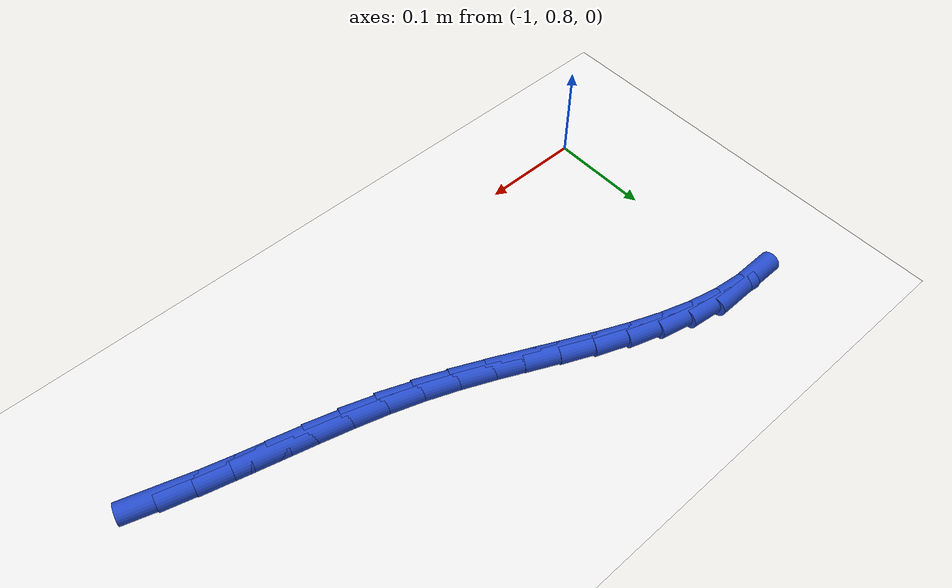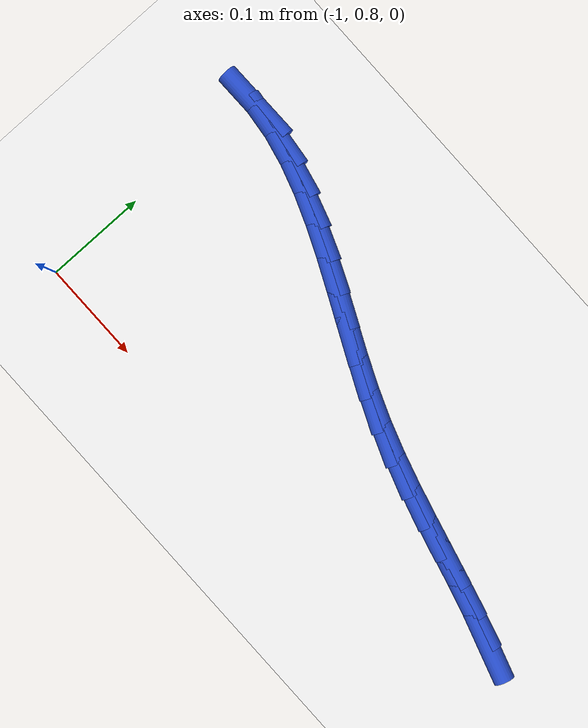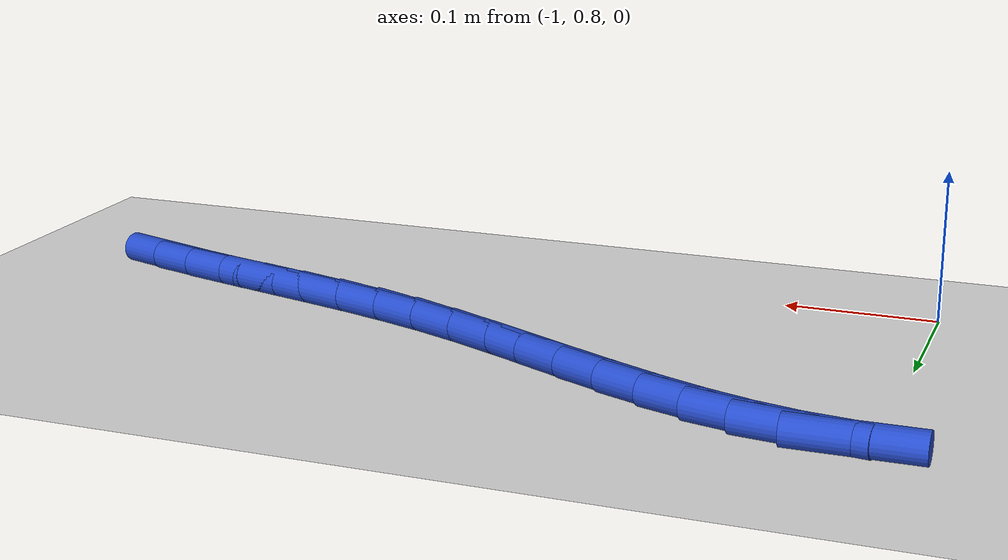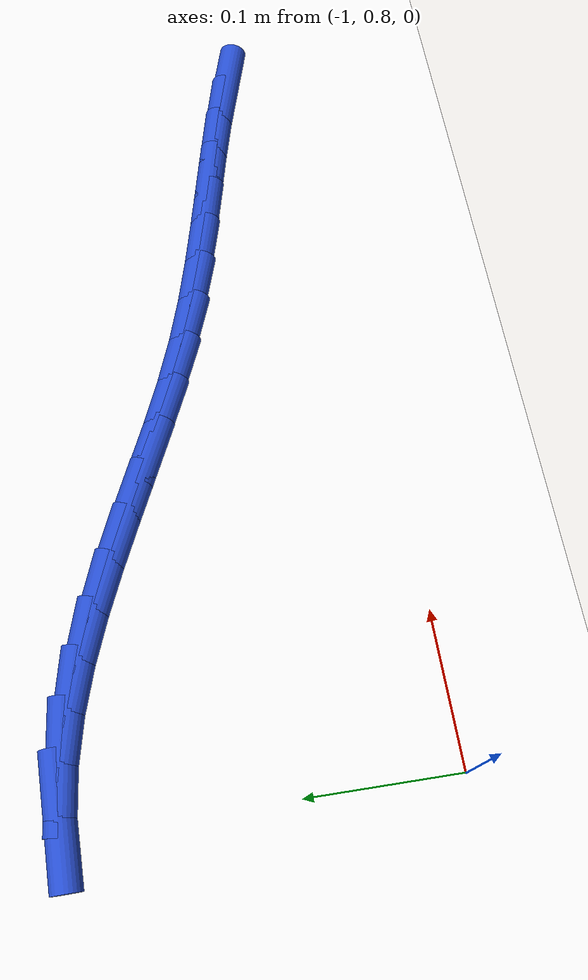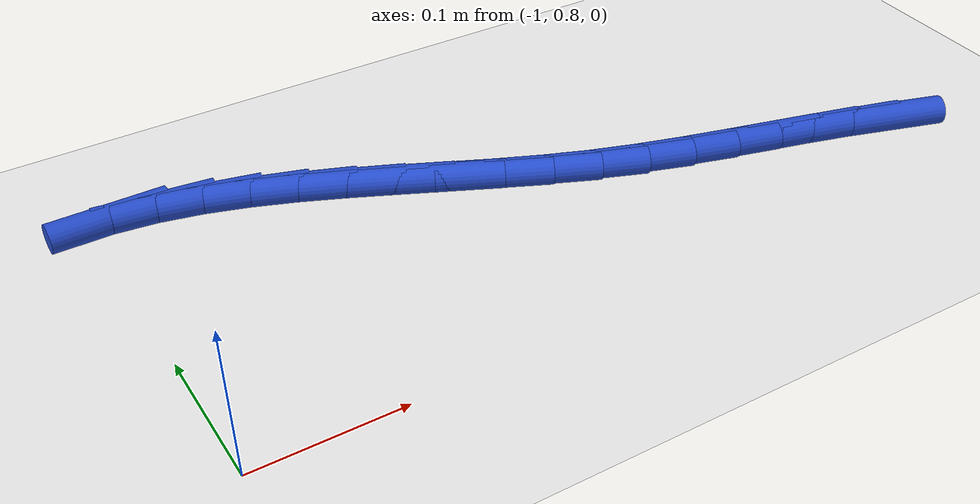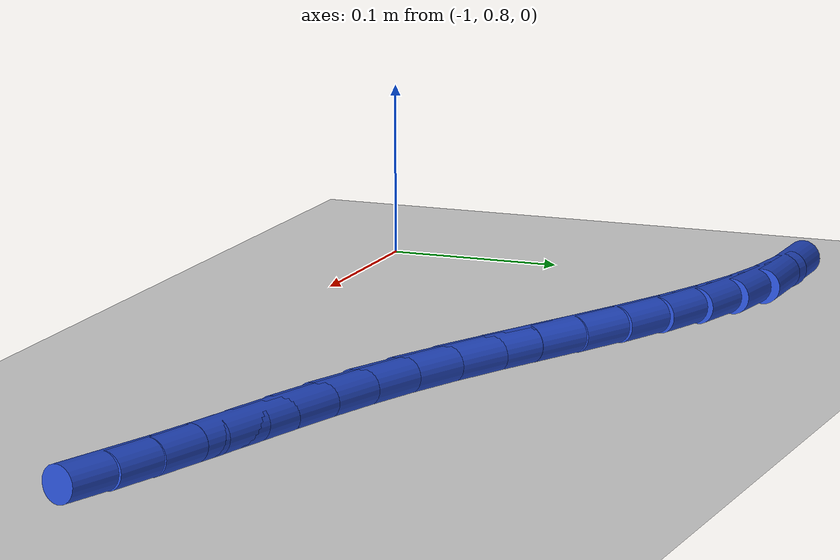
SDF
<sdf version="1.6">
 <world name="default">
  <model name="ground_plane">
   <static>1</static>
   <link name="link">
    <collision name="collision">
     <geometry><plane><normal>0 0 1</normal><size>100 100</size></plane></geometry>
     <surface><friction><ode><mu>100</mu><mu2>50</mu2></ode></friction></surface>
    </collision>
    <visual name="visual">
     <cast_shadows>0</cast_shadows>
     <geometry><plane><normal>0 0 1</normal><size>100 100</size></plane></geometry>
     <material>
      <script><uri>file://media/materials/scripts/gazebo.material</uri><name>Gazebo/WhiteGlow</name></script>
     </material>
    </visual>
   </link>
  </model>
  <model name="line">
   <link name="link_33">
    <pose>-0.4786626644284542 0.8703753021926585 0.01 0 1.57 -0.3038911339191584</pose>
    <collision name="collision">
     <geometry><cylinder><radius>0.01</radius><length>0.08</length></cylinder></geometry>
    </collision>
    <visual name="visual">
     <material>
      <script><name>Gazebo/Blue</name><uri>file://media/materials/scripts/gazebo.material</uri></script>
     </material>
     <geometry><cylinder><radius>0.01</radius><length>0.08</length></cylinder></geometry>
    </visual>
   </link>
   <link name="link_34">
    <pose>-0.5083128460349068 0.8796737438810759 0.01 0 1.57 -0.26995806032222636</pose>
    <collision name="collision">
     <geometry><cylinder><radius>0.01</radius><length>0.08</length></cylinder></geometry>
    </collision>
    <visual name="visual">
     <material>
      <script><name>Gazebo/Blue</name><uri>file://media/materials/scripts/gazebo.material</uri></script>
     </material>
     <geometry><cylinder><radius>0.01</radius><length>0.08</length></cylinder></geometry>
    </visual>
   </link>
   <link name="link_35">
    <pose>-0.5385805002516725 0.8880491968086387 0.01 0 1.57 -0.2514852141585984</pose>
    <collision name="collision">
     <geometry><cylinder><radius>0.01</radius><length>0.08</length></cylinder></geometry>
    </collision>
    <visual name="visual">
     <material>
      <script><name>Gazebo/Blue</name><uri>file://media/materials/scripts/gazebo.material</uri></script>
     </material>
     <geometry><cylinder><radius>0.01</radius><length>0.08</length></cylinder></geometry>
    </visual>
   </link>
   <link name="link_36">
    <pose>-0.5692994047998174 0.8959416382107334 0.01 0 1.57 -0.24796424889364851</pose>
    <collision name="collision">
     <geometry><cylinder><radius>0.01</radius><length>0.08</length></cylinder></geometry>
    </collision>
    <visual name="visual">
     <material>
      <script><name>Gazebo/Blue</name><uri>file://media/materials/scripts/gazebo.material</uri></script>
     </material>
     <geometry><cylinder><radius>0.01</radius><length>0.08</length></cylinder></geometry>
    </visual>
   </link>
   <link name="link_37">
    <pose>-0.6003033374004086 0.9037910453227471 0.01 0 1.57 -0.2590104353326691</pose>
    <collision name="collision">
     <geometry><cylinder><radius>0.01</radius><length>0.08</length></cylinder></geometry>
    </collision>
    <visual name="visual">
     <material>
      <script><name>Gazebo/Blue</name><uri>file://media/materials/scripts/gazebo.material</uri></script>
     </material>
     <geometry><cylinder><radius>0.01</radius><length>0.08</length></cylinder></geometry>
    </visual>
   </link>
   <link name="link_38">
    <pose>-0.6314260757745126 0.9120373953800663 0.01 0 1.57 -0.28437631583223855</pose>
    <collision name="collision">
     <geometry><cylinder><radius>0.01</radius><length>0.08</length></cylinder></geometry>
    </collision>
    <visual name="visual">
     <material>
      <script><name>Gazebo/Blue</name><uri>file://media/materials/scripts/gazebo.material</uri></script>
     </material>
     <geometry><cylinder><radius>0.01</radius><length>0.08</length></cylinder></geometry>
    </visual>
   </link>
   <link name="link_39">
    <pose>-0.6625013976431957 0.9211206656180785 0.01 0 1.57 -0.3238761465801971</pose>
    <collision name="collision">
     <geometry><cylinder><radius>0.01</radius><length>0.08</length></cylinder></geometry>
    </collision>
    <visual name="visual">
     <material>
      <script><name>Gazebo/Blue</name><uri>file://media/materials/scripts/gazebo.material</uri></script>
     </material>
     <geometry><cylinder><radius>0.01</radius><length>0.08</length></cylinder></geometry>
    </visual>
   </link>
   <link name="link_40">
    <pose>-0.6933630807275251 0.93148083327217 0.01 0 1.57 -0.3736610651016851</pose>
    <collision name="collision">
     <geometry><cylinder><radius>0.01</radius><length>0.08</length></cylinder></geometry>
    </collision>
    <visual name="visual">
     <material>
      <script><name>Gazebo/Blue</name><uri>file://media/materials/scripts/gazebo.material</uri></script>
     </material>
     <geometry><cylinder><radius>0.01</radius><length>0.08</length></cylinder></geometry>
    </visual>
   </link>
   <link name="link_41">
    <pose>-0.7238711940789038 0.9434424847896838 0.01 0 1.57 -0.4135131069568589</pose>
    <collision name="collision">
     <geometry><cylinder><radius>0.01</radius><length>0.08</length></cylinder></geometry>
    </collision>
    <visual name="visual">
     <material>
      <script><name>Gazebo/Blue</name><uri>file://media/materials/scripts/gazebo.material</uri></script>
     </material>
     <geometry><cylinder><radius>0.01</radius><length>0.08</length></cylinder></geometry>
    </visual>
   </link>
   <link name="link_42">
    <pose>-0.7540342982452174 0.9566784879495669 0.01 0 1.57 -0.43693600392346466</pose>
    <collision name="collision">
     <geometry><cylinder><radius>0.01</radius><length>0.08</length></cylinder></geometry>
    </collision>
    <visual name="visual">
     <material>
      <script><name>Gazebo/Blue</name><uri>file://media/materials/scripts/gazebo.material</uri></script>
     </material>
     <geometry><cylinder><radius>0.01</radius><length>0.08</length></cylinder></geometry>
    </visual>
   </link>
   <link name="link_43">
    <pose>-0.7839130333864973 0.9706331367990634 0.01 0 1.57 -0.44430604719258404</pose>
    <collision name="collision">
     <geometry><cylinder><radius>0.01</radius><length>0.08</length></cylinder></geometry>
    </collision>
    <visual name="visual">
     <material>
      <script><name>Gazebo/Blue</name><uri>file://media/materials/scripts/gazebo.material</uri></script>
     </material>
     <geometry><cylinder><radius>0.01</radius><length>0.08</length></cylinder></geometry>
    </visual>
   </link>
   <link name="link_44">
    <pose>-0.8135680959028473 0.984750478551717 0.01 0 1.57 -0.4355437241821871</pose>
    <collision name="collision">
     <geometry><cylinder><radius>0.01</radius><length>0.08</length></cylinder></geometry>
    </collision>
    <visual name="visual">
     <material>
      <script><name>Gazebo/Blue</name><uri>file://media/materials/scripts/gazebo.material</uri></script>
     </material>
     <geometry><cylinder><radius>0.01</radius><length>0.08</length></cylinder></geometry>
    </visual>
   </link>
   <link name="link_45">
    <pose>-0.8430601821943711 0.9984745604210705 0.01 0 1.57 -0.4100326886450885</pose>
    <collision name="collision">
     <geometry><cylinder><radius>0.01</radius><length>0.08</length></cylinder></geometry>
    </collision>
    <visual name="visual">
     <material>
      <script><name>Gazebo/Blue</name><uri>file://media/materials/scripts/gazebo.material</uri></script>
     </material>
     <geometry><cylinder><radius>0.01</radius><length>0.08</length></cylinder></geometry>
    </visual>
   </link>
   <link name="link_46">
    <pose>-0.8724499886611731 1.011249429620668 0.01 0 1.57 -0.36663722793771414</pose>
    <collision name="collision">
     <geometry><cylinder><radius>0.01</radius><length>0.08</length></cylinder></geometry>
    </collision>
    <visual name="visual">
     <material>
      <script><name>Gazebo/Blue</name><uri>file://media/materials/scripts/gazebo.material</uri></script>
     </material>
     <geometry><cylinder><radius>0.01</radius><length>0.08</length></cylinder></geometry>
    </visual>
   </link>
   <link name="link_47">
    <pose>-0.901798211703357 1.0225191333640524 0.01 0 1.57 -0.3038553433925795</pose>
    <collision name="collision">
     <geometry><cylinder><radius>0.01</radius><length>0.08</length></cylinder></geometry>
    </collision>
    <visual name="visual">
     <material>
      <script><name>Gazebo/Blue</name><uri>file://media/materials/scripts/gazebo.material</uri></script>
     </material>
     <geometry><cylinder><radius>0.01</radius><length>0.08</length></cylinder></geometry>
    </visual>
   </link>
   <link name="link_48">
    <pose>-0.9311655477210272 1.0317277188647673 0.01 0 1.57 -0.22021218021429617</pose>
    <collision name="collision">
     <geometry><cylinder><radius>0.01</radius><length>0.08</length></cylinder></geometry>
    </collision>
    <visual name="visual">
     <material>
      <script><name>Gazebo/Blue</name><uri>file://media/materials/scripts/gazebo.material</uri></script>
     </material>
     <geometry><cylinder><radius>0.01</radius><length>0.08</length></cylinder></geometry>
    </visual>
   </link>
   <link name="link_49">
    <pose>-0.9606126931142873 1.0383192333363558 0.01 0 1.57 -0.11502772581393149</pose>
    <collision name="collision">
     <geometry><cylinder><radius>0.01</radius><length>0.08</length></cylinder></geometry>
    </collision>
    <visual name="visual">
     <material>
      <script><name>Gazebo/Blue</name><uri>file://media/materials/scripts/gazebo.material</uri></script>
     </material>
     <geometry><cylinder><radius>0.01</radius><length>0.08</length></cylinder></geometry>
    </visual>
   </link>
   <link name="link_50">
    <pose>-0.9902003442832412 1.0417377239923613 0.01 0 1.57 0.00824155825658132</pose>
    <collision name="collision">
     <geometry><cylinder><radius>0.01</radius><length>0.08</length></cylinder></geometry>
    </collision>
    <visual name="visual">
     <material>
      <script><name>Gazebo/Blue</name><uri>file://media/materials/scripts/gazebo.material</uri></script>
     </material>
     <geometry><cylinder><radius>0.01</radius><length>0.08</length></cylinder></geometry>
    </visual>
   </link>
  </model>
 </world>
</sdf>
